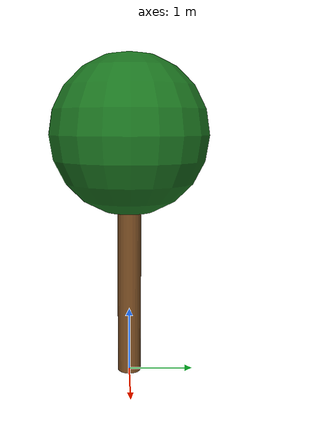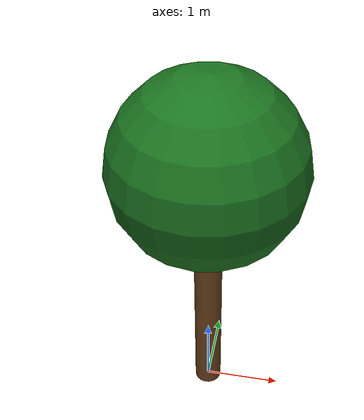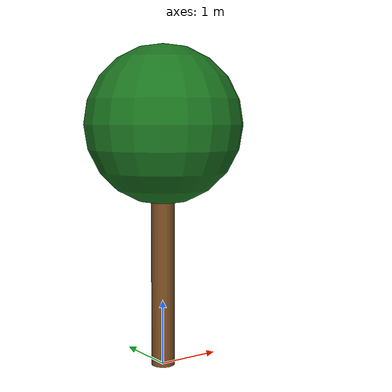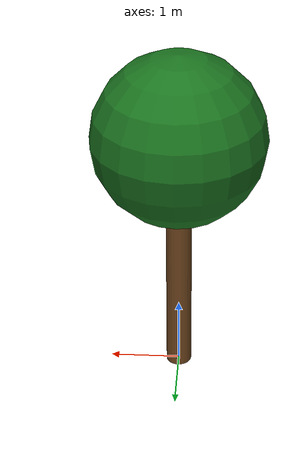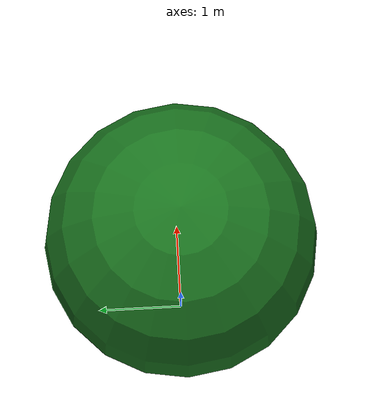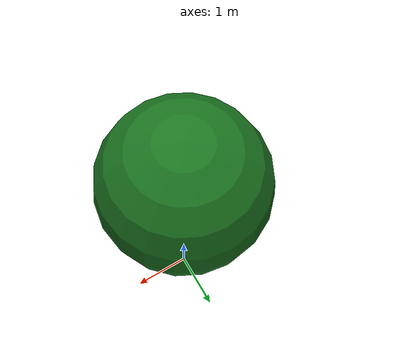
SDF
<?xml version="1.0"?>
<sdf version="1.9">
  <model name="palm_tree">
    <static>false</static>

    <link name="trunk">
      <visual name="trunk_visual">
        <geometry>
          <cylinder>
            <radius>0.18</radius>
            <length>3.5</length>
          </cylinder>
        </geometry>
        <pose>0 0 1.75 0 0 0</pose>
        <material>
          <ambient>0.45 0.28 0.12 1</ambient>
          <diffuse>0.45 0.28 0.12 1</diffuse>
        </material>
      </visual>

      <collision name="trunk_collision">
        <geometry>
          <cylinder>
            <radius>0.18</radius>
            <length>3.5</length>
          </cylinder>
        </geometry>
        <pose>0 0 1.75 0 0 0</pose>
      </collision>

      <visual name="leaves_visual">
        <pose>0 0 3.7 0 0 0</pose>
        <geometry>
          <sphere>
            <radius>1.2</radius>
          </sphere>
        </geometry>
        <material>
          <ambient>0.10 0.45 0.12 1</ambient>
          <diffuse>0.10 0.45 0.12 1</diffuse>
        </material>
      </visual>
    </link>
  </model>
</sdf>
